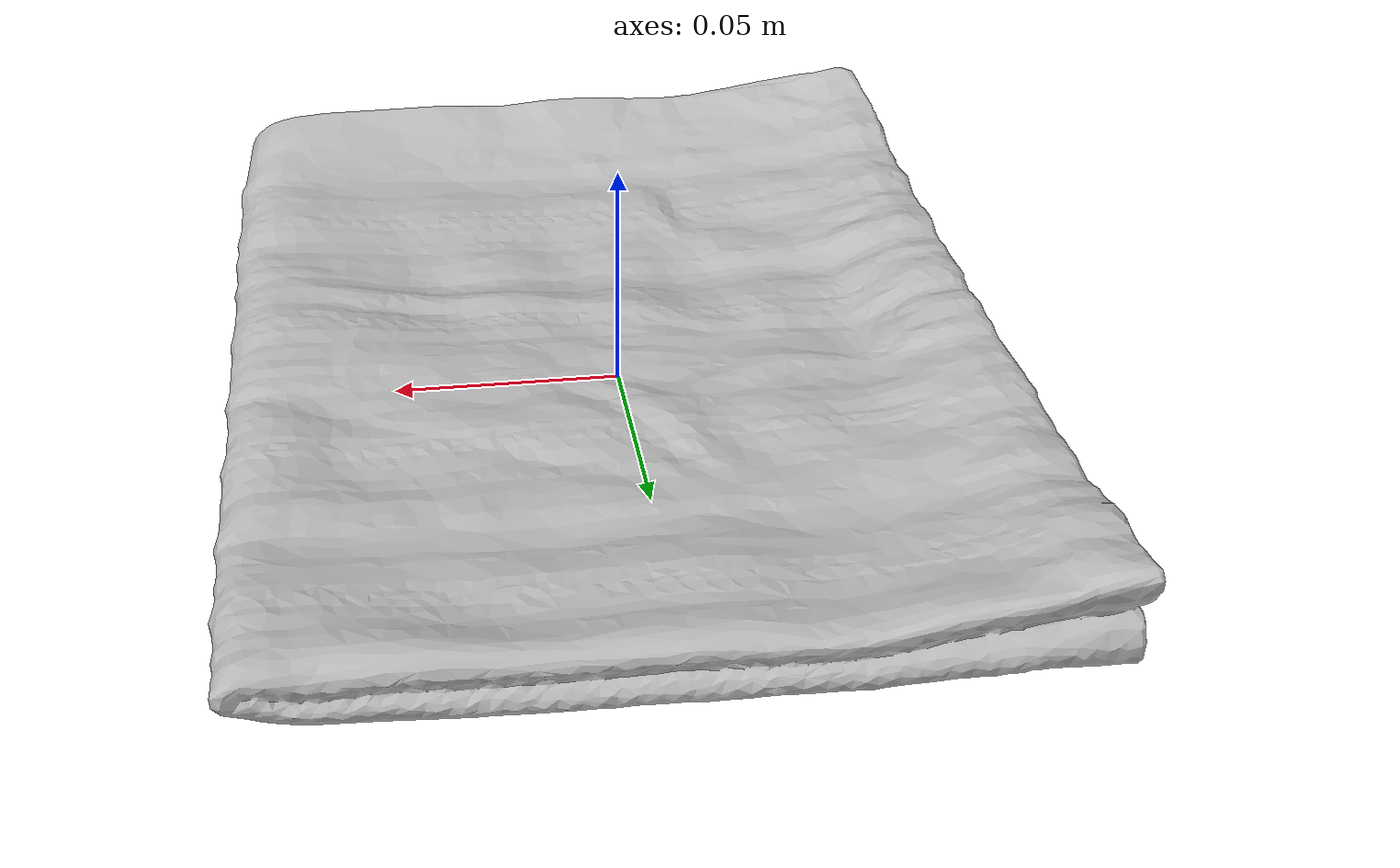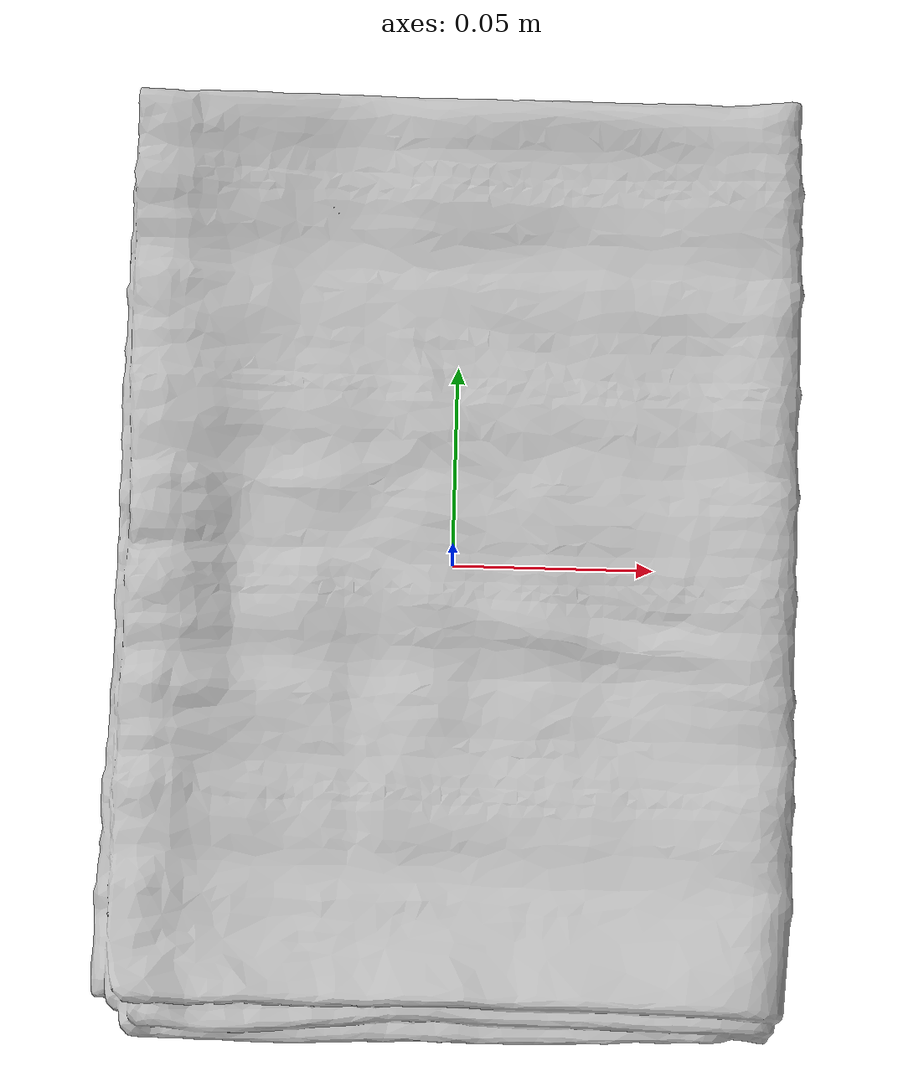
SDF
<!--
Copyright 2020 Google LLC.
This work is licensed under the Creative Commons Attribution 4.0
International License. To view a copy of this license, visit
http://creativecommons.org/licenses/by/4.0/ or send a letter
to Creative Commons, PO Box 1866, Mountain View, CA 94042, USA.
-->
<?xml version="1.0" ?>
<sdf version="1.6">
  <model name="Tag_Dishtowel_Dobby_Stripe_Blue_18_x_26">
    <link name="link_0">
      <visual name="visual">
        <geometry>
          <mesh>
            <uri>meshes/model.obj</uri>
          </mesh>
        </geometry>
      </visual>
      <collision name="collision_0">
        <geometry>
          <mesh>
            <uri>meshes/model.obj</uri>
          </mesh>
        </geometry>
      </collision>
    </link>
  </model>
</sdf>
